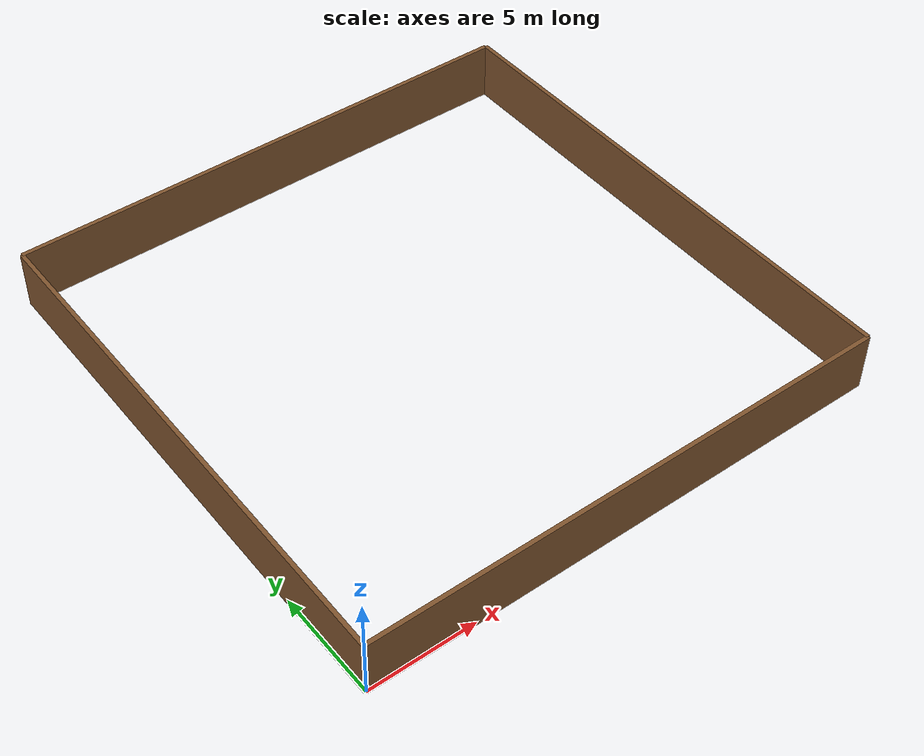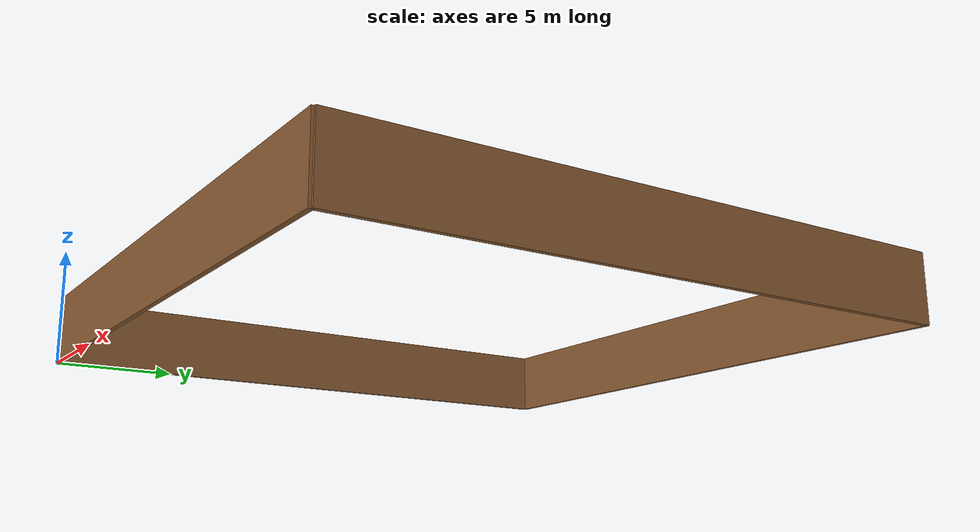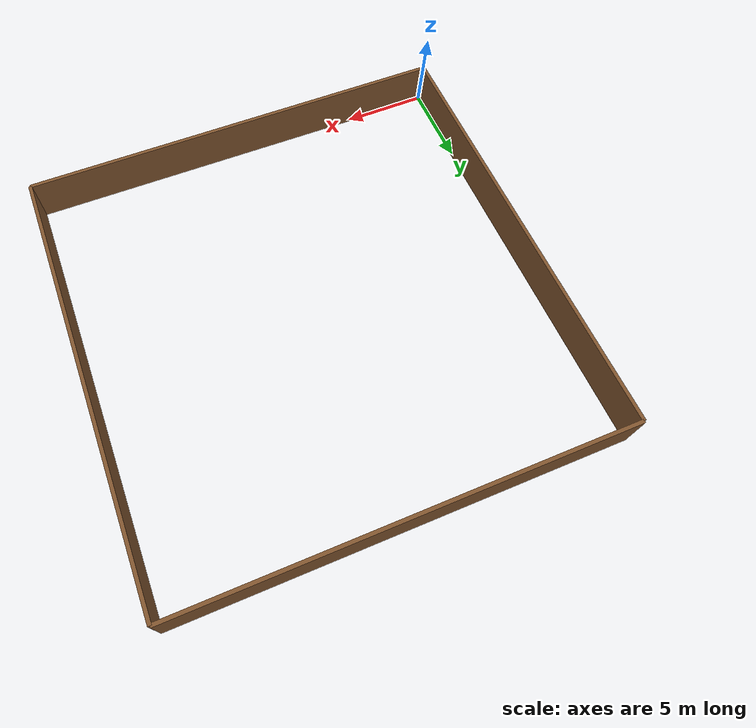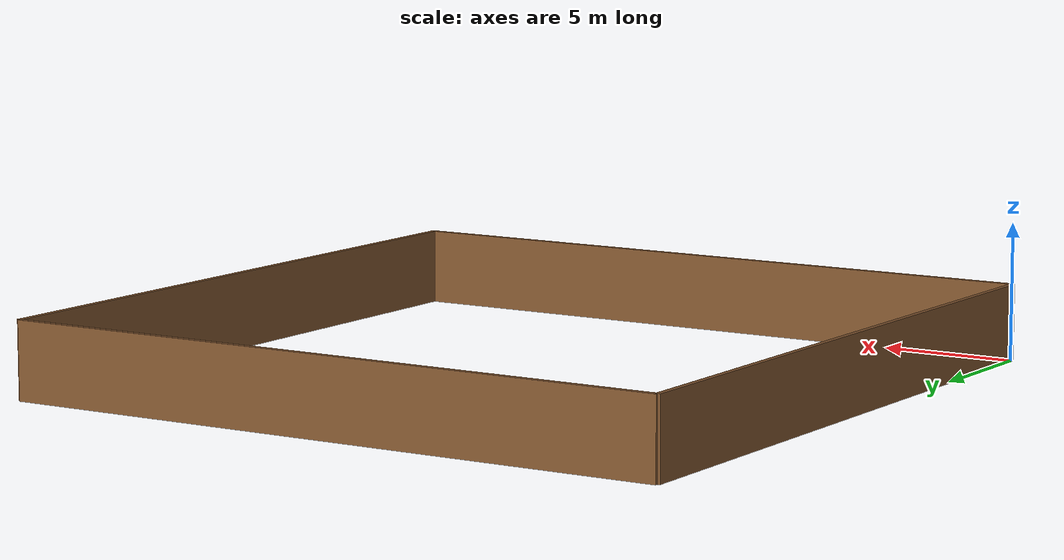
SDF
<?xml version="1.0" ?>
<sdf version="1.5">
  <model name="brownbrick_wall">
    <static>true</static>
    <link name="link1">
      <pose>12.5 0 1.4 0 0 0</pose>
      <collision name="collision">
        <geometry>
          <box>
            <size>25 0.2 2.8</size>
          </box>
        </geometry>
      </collision>
      <visual name="visual">
        <cast_shadows>false</cast_shadows>
        <geometry>
          <box>
            <size>25 0.2 2.8</size>
          </box>
        </geometry>
        <material>
          <script>
            <uri>model://brownbrick_wall/materials/scripts</uri>
            <uri>model://brownbrick_wall/materials/textures</uri>
            <name>vrc/brownbrick_wall</name>
          </script>
        </material>
      </visual>
    </link>

    <link name="link6">
      <pose>12.5 25 1.4 0 0 0</pose>
      <collision name="collision">
        <geometry>
          <box>
            <size>25 0.2 2.8</size>
          </box>
        </geometry>
      </collision>
      <visual name="visual">
        <cast_shadows>false</cast_shadows>
        <geometry>
          <box>
            <size>25 0.2 2.8</size>
          </box>
        </geometry>
        <material>
          <script>
            <uri>model://brownbrick_wall/materials/scripts</uri>
            <uri>model://brownbrick_wall/materials/textures</uri>
            <name>vrc/brownbrick_wall</name>
          </script>
        </material>
      </visual>
    </link>

    <link name="link11">
      <pose>0 12.5 1.4 0 0 1.57</pose>
      <collision name="collision">
        <geometry>
          <box>
            <size>25 0.2 2.8</size>
          </box>
        </geometry>
      </collision>
      <visual name="visual">
        <cast_shadows>false</cast_shadows>
        <geometry>
          <box>
            <size>25 0.2 2.8</size>
          </box>
        </geometry>
        <material>
          <script>
            <uri>model://brownbrick_wall/materials/scripts</uri>
            <uri>model://brownbrick_wall/materials/textures</uri>
            <name>vrc/brownbrick_wall</name>
          </script>
        </material>
      </visual>
    </link>

    <link name="link16">
      <pose>25 12.5 1.4 0 0 1.57</pose>
      <collision name="collision">
        <geometry>
          <box>
            <size>25 0.2 2.8</size>
          </box>
        </geometry>
      </collision>
      <visual name="visual">
        <cast_shadows>false</cast_shadows>
        <geometry>
          <box>
            <size>25 0.2 2.8</size>
          </box>
        </geometry>
        <material>
          <script>
            <uri>model://brownbrick_wall/materials/scripts</uri>
            <uri>model://brownbrick_wall/materials/textures</uri>
            <name>vrc/brownbrick_wall</name>
          </script>
        </material>
      </visual>
    </link>

  </model>
</sdf>
